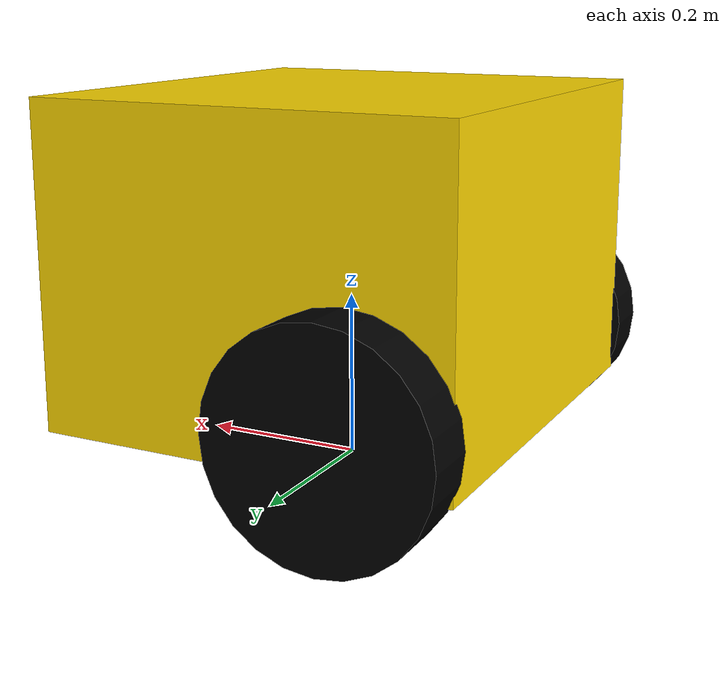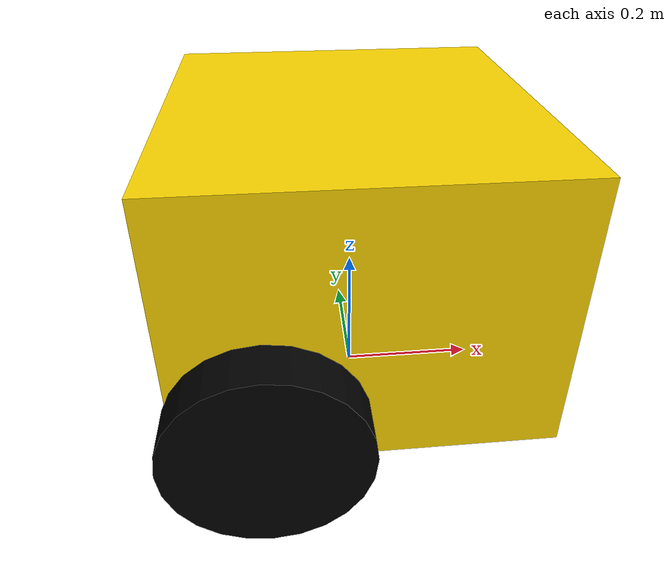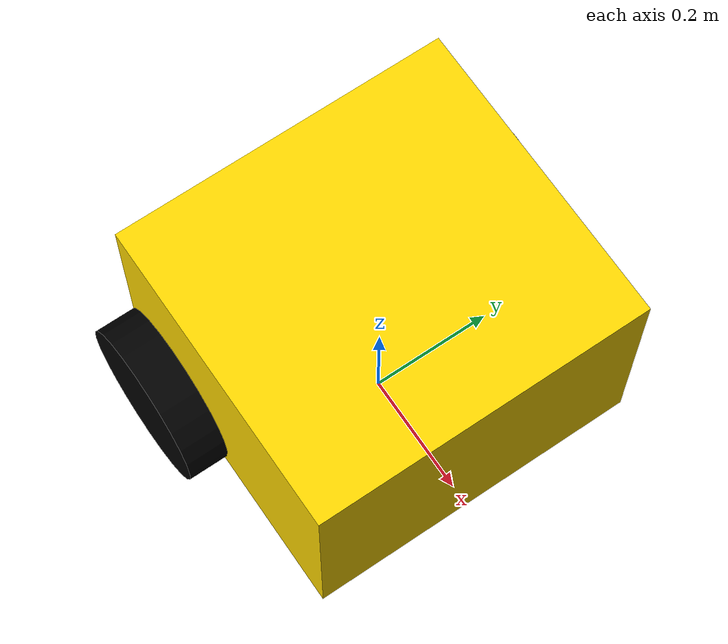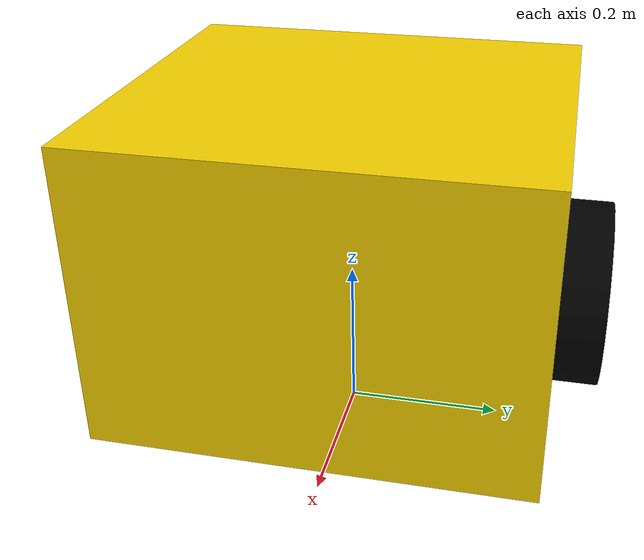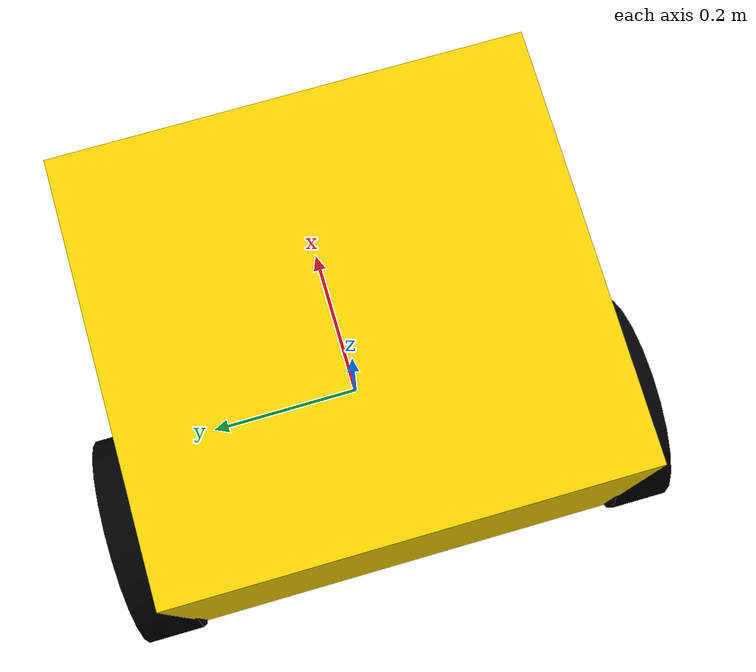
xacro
<?xml version="1.0"?>
<robot name="sam_bot" xmlns:xacro="http://www.ros.org/wiki/xacro" >

    <material name="black">
        <color rgba="0 0 0 1"/>
    </material>
    <material name="yellow">
        <color rgba="1 0.847 0 1"/>
    </material>

    <!-- BASE LINK -->

    <link name="base_link">

    </link>

    <!-- CHASSIS LINK -->

    <joint name="chassis_joint" type="fixed">
        <parent link="base_link"/>
        <child link="chassis"/>
        <origin xyz="0 0 0.26"/>
    </joint>

    <link name="chassis">
        <visual>
            <origin xyz="0 0 0"/>
            <geometry>
                <box size="0.50 0.54 0.38"/>
            </geometry>
            <material name="yellow"/>
        </visual>
    </link>

    <joint name="left_wheel_joint" type="fixed">
        <parent link="base_link"/>
        <child link="left_wheel"/>
        <origin xyz="-0.13 -0.3 0.13" rpy="-${pi/2} 0 0" />
        <axis xyz="0 0 1"/>
    </joint>

    <link name="left_wheel">
        <visual>
            <geometry>
                <cylinder radius="0.13" length="0.07"/>
            </geometry>
            <material name="black"/>
        </visual>
    </link>

    <joint name="right_wheel_joint" type="fixed">
        <parent link="base_link"/>
        <child link="right_wheel"/>
        <origin xyz="-0.13 0.3 0.13" rpy="-${pi/2} 0 0" />
        <axis xyz="0 0 1"/>
    </joint>

    <link name="right_wheel">
        <visual>
            <geometry>
                <cylinder radius="0.13" length="0.07"/>
            </geometry>
            <material name="black"/>
        </visual>
    </link>
</robot>
